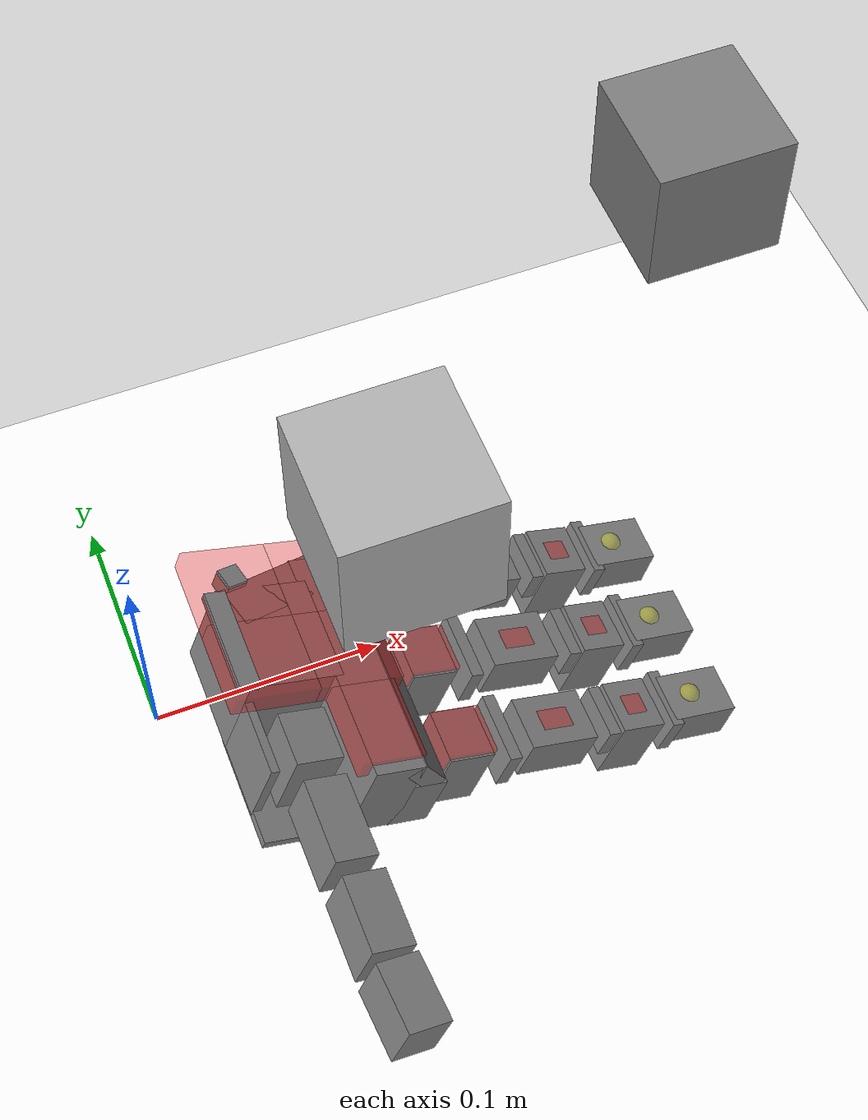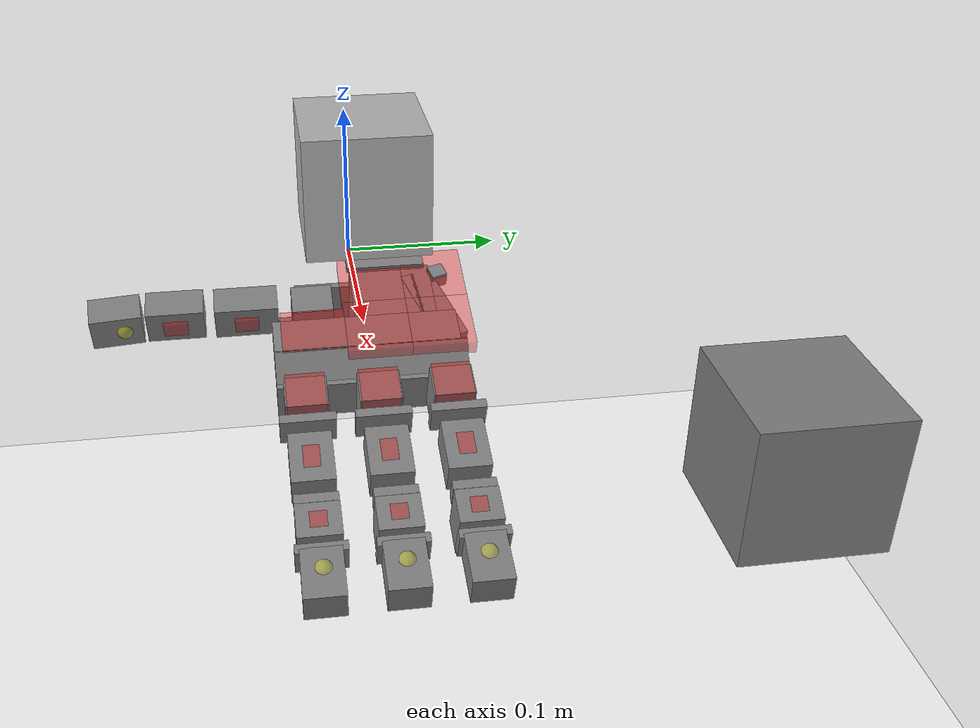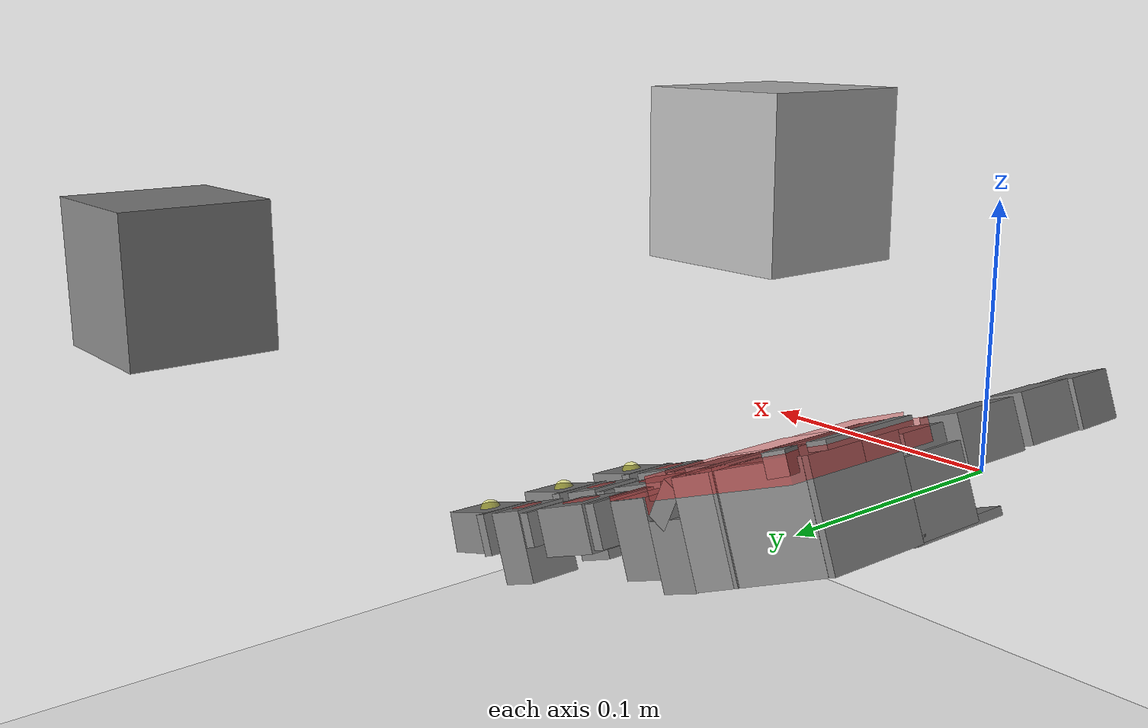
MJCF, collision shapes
<mujoco model="leap_scene">
  <include file="leap_rh_touch_mjx.xml"/>

  <default>
    <default class="cube">
      <geom friction=".3 0.05" conaffinity="2" condim="3"/>
    </default>
  </default>

  <statistic center="0.15 0 0" extent="0.4" meansize="0.01"/>

  <visual>
    <headlight diffuse=".8 .8 .8" ambient=".2 .2 .2" specular="1 1 1"/>
    <rgba force="1 0 0 1"/>
    <global azimuth="120" elevation="-20"/>
    <map force="0.01" stiffness="500"/>
    <scale forcewidth="0.1" contactwidth="0.5" contactheight="0.2"/>
    <quality shadowsize="8192"/>
  </visual>

  <asset>
    <texture type="skybox" builtin="gradient" rgb1="1 1 1" rgb2="1 1 1" width="800" height="800"/>
    <texture type="2d" name="groundplane" builtin="checker" mark="edge" rgb1="1 1 1" rgb2="1 1 1" markrgb="0 0 0"
      width="300" height="300"/>
    <material name="groundplane" texture="groundplane" texuniform="true" texrepeat="5 5" reflectance="0"/>

    <!-- Object materials -->
    <material name="cube_gray" rgba="0.7 0.7 0.7 1"/>
    <material name="pink" rgba="1.0 0.4 0.8 1.0"/>
    <material name="lightblue" rgba="0.6 0.8 1.0 1.0"/>
    <material name="lightgreen" rgba="0.6 1.0 0.6 1.0"/>
    <material name="lightyellow" rgba="1.0 1.0 0.6 1.0"/>
    <material name="lightpurple" rgba="0.8 0.6 1.0 1.0"/>
    <material name="salmon" rgba="1.0 0.6 0.5 1.0"/>
  </asset>

  <worldbody>
    <camera name="side" pos="-0.183 0.396 0.296" xyaxes="-0.783 -0.622 -0.000 0.332 -0.419 0.845"/>
    <geom name="floor" pos="0 0 -0.25" size="0 0 0.01" type="plane" material="groundplane" contype="2" conaffinity="2"/>

    <!-- Cube 0 - Original Cube -->
    <body name="cube0" pos="0.11 0.0 0.1" quat="1 0 0 0" childclass="cube">
      <freejoint name="cube0_freejoint"/>
      <geom name="cube0_geom" type="box" size=".035 .035 .035" mass=".036" material="cube_gray" contype="4" conaffinity="3" group="3"/>
      <site name="cube0_center" pos="0 0 0" group="4"/>
    </body>

    <!-- Cube 1 -->
    <body name="cube1" pos="0.11 0.0 0.1" quat="1 0 0 0" childclass="cube">
      <freejoint name="cube1_freejoint"/>
      <geom name="cube1_geom" type="box" size=".033333 .033333 .033333" mass=".031098" material="lightblue" contype="8" conaffinity="3" group="3"/>
      <site name="cube1_center" pos="0 0 0" group="4"/>
    </body>

    <!-- Cube 2 -->
    <body name="cube2" pos="0.11 0.0 0.1" quat="1 0 0 0" childclass="cube">
      <freejoint name="cube2_freejoint"/>
      <geom name="cube2_geom" type="box" size=".031667 .031667 .031667" mass=".026663" material="lightgreen" contype="16" conaffinity="3" group="3"/>
      <site name="cube2_center" pos="0 0 0" group="4"/>
    </body>

    <!-- Cube 3 -->
    <body name="cube3" pos="0.11 0.0 0.1" quat="1 0 0 0" childclass="cube">
      <freejoint name="cube3_freejoint"/>
      <geom name="cube3_geom" type="box" size=".03 .03 .03" mass=".022671" material="lightyellow" contype="32" conaffinity="3" group="3"/>
      <site name="cube3_center" pos="0 0 0" group="4"/>
    </body>

    <!-- Cube 4 -->
    <body name="cube4" pos="0.11 0.0 0.1" quat="1 0 0 0" childclass="cube">
      <freejoint name="cube4_freejoint"/>
      <geom name="cube4_geom" type="box" size=".028333 .028333 .028333" mass=".019098" material="lightpurple" contype="64" conaffinity="3" group="3"/>
      <site name="cube4_center" pos="0 0 0" group="4"/>
    </body>

    <!-- Cube 5 -->
    <body name="cube5" pos="0.11 0.0 0.1" quat="1 0 0 0" childclass="cube">
      <freejoint name="cube5_freejoint"/>
      <geom name="cube5_geom" type="box" size=".026667 .026667 .026667" mass=".015922" material="lightpurple" contype="128" conaffinity="3" group="3"/>
      <site name="cube5_center" pos="0 0 0" group="4"/>
    </body>

    <!-- Cube 6 -->
    <body name="cube6" pos="0.11 0.0 0.1" quat="1 0 0 0" childclass="cube">
      <freejoint name="cube6_freejoint"/>
      <geom name="cube6_geom" type="box" size=".025 .025 .025" mass=".01312" material="salmon" contype="256" conaffinity="3" group="3"/>
      <site name="cube6_center" pos="0 0 0" group="4"/>
    </body>

    <body name="goal" mocap="true" pos="0.325 0.17 0.0475">
      <geom type="box" size=".035 .035 .035" mass=".108" group="3"/>
    </body>
  </worldbody>

  <sensor>
    <!-- cube sensors for all objects -->
    <framepos name="cube0_position" objtype="body" objname="cube0"/>
    <framequat name="cube0_orientation" objtype="body" objname="cube0"/>
    <framelinvel name="cube0_linvel" objtype="body" objname="cube0"/>
    <frameangvel name="cube0_angvel" objtype="body" objname="cube0"/>
    <frameangacc name="cube0_angacc" objtype="body" objname="cube0"/>
    <framezaxis name="cube0_upvector" objtype="body" objname="cube0"/>

    <framepos name="cube1_position" objtype="body" objname="cube1"/>
    <framequat name="cube1_orientation" objtype="body" objname="cube1"/>
    <framelinvel name="cube1_linvel" objtype="body" objname="cube1"/>
    <frameangvel name="cube1_angvel" objtype="body" objname="cube1"/>
    <frameangacc name="cube1_angacc" objtype="body" objname="cube1"/>
    <framezaxis name="cube1_upvector" objtype="body" objname="cube1"/>

    <framepos name="cube2_position" objtype="body" objname="cube2"/>
    <framequat name="cube2_orientation" objtype="body" objname="cube2"/>
    <framelinvel name="cube2_linvel" objtype="body" objname="cube2"/>
    <frameangvel name="cube2_angvel" objtype="body" objname="cube2"/>
    <frameangacc name="cube2_angacc" objtype="body" objname="cube2"/>
    <framezaxis name="cube2_upvector" objtype="body" objname="cube2"/>

    <framepos name="cube3_position" objtype="body" objname="cube3"/>
    <framequat name="cube3_orientation" objtype="body" objname="cube3"/>
    <framelinvel name="cube3_linvel" objtype="body" objname="cube3"/>
    <frameangvel name="cube3_angvel" objtype="body" objname="cube3"/>
    <frameangacc name="cube3_angacc" objtype="body" objname="cube3"/>
    <framezaxis name="cube3_upvector" objtype="body" objname="cube3"/>

    <framepos name="cube4_position" objtype="body" objname="cube4"/>
    <framequat name="cube4_orientation" objtype="body" objname="cube4"/>
    <framelinvel name="cube4_linvel" objtype="body" objname="cube4"/>
    <frameangvel name="cube4_angvel" objtype="body" objname="cube4"/>
    <frameangacc name="cube4_angacc" objtype="body" objname="cube4"/>
    <framezaxis name="cube4_upvector" objtype="body" objname="cube4"/>

    <framepos name="cube5_position" objtype="body" objname="cube5"/>
    <framequat name="cube5_orientation" objtype="body" objname="cube5"/>
    <framelinvel name="cube5_linvel" objtype="body" objname="cube5"/>
    <frameangvel name="cube5_angvel" objtype="body" objname="cube5"/>
    <frameangacc name="cube5_angacc" objtype="body" objname="cube5"/>
    <framezaxis name="cube5_upvector" objtype="body" objname="cube5"/>

    <framepos name="cube6_position" objtype="body" objname="cube6"/>
    <framequat name="cube6_orientation" objtype="body" objname="cube6"/>
    <framelinvel name="cube6_linvel" objtype="body" objname="cube6"/>
    <frameangvel name="cube6_angvel" objtype="body" objname="cube6"/>
    <frameangacc name="cube6_angacc" objtype="body" objname="cube6"/>
    <framezaxis name="cube6_upvector" objtype="body" objname="cube6"/>

    <!-- hand. -->
    <framepos name="palm_position" objtype="site" objname="grasp_site"/>
    <framepos name="th_tip_position" objtype="site" objname="th_tip" reftype="site" refname="grasp_site"/>
    <framepos name="if_tip_position" objtype="site" objname="if_tip" reftype="site" refname="grasp_site"/>
    <framepos name="mf_tip_position" objtype="site" objname="mf_tip" reftype="site" refname="grasp_site"/>
    <framepos name="rf_tip_position" objtype="site" objname="rf_tip" reftype="site" refname="grasp_site"/>

    <!-- goal. -->
    <framequat name="cube_goal_orientation" objtype="body" objname="goal"/>
    <framezaxis name="cube_goal_upvector" objtype="body" objname="goal"/>
  </sensor>

  <keyframe>
    <key name="home"
      qpos="
      0.8 0 0.8 0.8
      0.8 0 0.8 0.8
      0.8 0 0.8 0.8
      0.8 0.8 0.8 0
      0.11 0.0 0.1 1 0 0 0
      0.11 0.0 0.1 1 0 0 0
      0.11 0.0 0.1 1 0 0 0
      0.11 0.0 0.1 1 0 0 0
      0.11 0.0 0.1 1 0 0 0
      0.11 0.0 0.1 1 0 0 0
      0.11 0.0 0.1 1 0 0 0"
      ctrl="
      0.8 0 0.8 0.8
      0.8 0 0.8 0.8
      0.8 0 0.8 0.8
      0.8 0.8 0.8 0" mpos="0.25 0.16 0"
      mquat="1 0 0 0"/>
  </keyframe>
</mujoco>

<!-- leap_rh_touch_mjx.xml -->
<mujoco model="leap_rh">
  <compiler angle="radian" autolimits="true"/>

  <option timestep="0.01" integrator="Euler" iterations="5" ls_iterations="8">
    <flag eulerdamp="disable"/>
  </option>

  <custom>
    <numeric data="30" name="max_contact_points"/>
    <numeric data="12" name="max_geom_pairs"/>
  </custom>

  <asset>
    <material name="black" rgba="0.2 0.2 0.2 1"/>
    <material name="gray" rgba="0.5 0.5 0.5 1"/>
    <mesh name="leap_mount" file="meshes/leap_mount.obj"/>
    <!-- Example path to palm right -->
    <!-- mujoco_playground/external_deps/mujoco_menagerie/leap_hand/assets/palm_right.obj -->
    <!-- original path, incorrect. -->
    <!-- correct path -->
    <!-- For Mujoco Viewer debugging, temporarily switch these mesh file paths to absolute paths. -->
    <mesh name="palm" file="../../../../external_deps/mujoco_menagerie/leap_hand/assets/palm_right.obj"/>
    <mesh name="base" file="../../../../external_deps/mujoco_menagerie/leap_hand/assets/base.obj"/>
    <mesh name="proximal" file="../../../../external_deps/mujoco_menagerie/leap_hand/assets/proximal.obj"/>
    <mesh name="medial" file="../../../../external_deps/mujoco_menagerie/leap_hand/assets/medial.obj"/>
    <mesh name="distal" file="../../../../external_deps/mujoco_menagerie/leap_hand/assets/distal.obj"/>
    <mesh name="tip" file="../../../../external_deps/mujoco_menagerie/leap_hand/assets/tip.obj"/>
    <mesh name="thumb_base" file="../../../../external_deps/mujoco_menagerie/leap_hand/assets/thumb_base.obj"/>
    <mesh name="thumb_proximal" file="../../../../external_deps/mujoco_menagerie/leap_hand/assets/thumb_proximal.obj"/>
    <mesh name="thumb_distal" file="../../../../external_deps/mujoco_menagerie/leap_hand/assets/thumb_distal.obj"/>
    <mesh name="thumb_tip" file="../../../../external_deps/mujoco_menagerie/leap_hand/assets/thumb_tip.obj"/>
  </asset>

  <default>
    <default class="leap_touch">
      <site type="box" size="0.005 0.005 0.005" rgba="0.8 0.8 0.8 0.15" group="4"/>
    </default>
    <default class="leap_rh">
      <geom group="3" friction="1.1 0.2 0.0002" solref="0.02 1.5" solimp="0.9 0.99 0.001"/>
      <default class="visual">
        <geom group="2" type="mesh" contype="0" conaffinity="0" density="0" material="black"/>
      </default>
      <default class="tip">
        <geom size="0.01 0.012 0.016" pos="-0.0012969 -0.0335524 0.0145207" quat="0.703552 0.709596 -0.0292107 -0.0252203" type="box" friction="0.7 0.05 0.0002" rgba=".5 .5 .5 .3"/>
      </default>
      <default class="thumb_tip">
        <geom size="0.01 0.012 0.016" pos="-0.00127744 -0.0455619 -0.0144774" quat="0.708101 0.705072 -0.0294902 -0.024426" type="box" friction="0.7 0.05 0.0002" rgba=".5 .5 .5 .3"/>
      </default>

      <position kp="3.0" inheritrange="1"/>
      <!-- armature = rotor inertia * gear ratio^2 = 1.7 * 1e-8 * 288*288 = 0.00149376 -->
      <!-- max torque = 0.2196 = 600/1000*0.366 -->
      <!-- frictionloss = rough guess, small ish value -->
      <joint axis="0 0 -1" damping="0.2" armature="0.00149376" actuatorfrcrange="-0.2196 0.2196" frictionloss="0.02"/>

      <default class="mcp">
        <joint range="-0.314 2.23"/>
      </default>
      <default class="rot">
        <joint range="-1.047 1.047"/>
      </default>
      <default class="pip">
        <joint range="-0.506 1.885"/>
      </default>
      <default class="dip">
        <joint range="-0.366 2.042"/>
      </default>
      <default class="thumb_cmc">
        <joint range="-0.349 2.094"/>
      </default>
      <default class="thumb_axl">
        <joint range="-0.349 2.094"/>
      </default>
      <default class="thumb_mcp">
        <joint range="-0.47 2.443"/>
      </default>
      <default class="thumb_ipl">
        <joint range="-1.34 1.88"/>
      </default>

    </default>
  </default>

  <contact>
    <!-- filter the palm from all other finger bodies except the tips -->
    <exclude body1="palm" body2="if_bs"/>
    <exclude body1="palm" body2="mf_bs"/>
    <exclude body1="palm" body2="rf_bs"/>
    <exclude body1="palm" body2="th_mp"/>

    <exclude body1="palm" body2="if_px"/>
    <exclude body1="palm" body2="mf_px"/>
    <exclude body1="palm" body2="rf_px"/>
    <exclude body1="palm" body2="th_bs"/>

    <exclude body1="palm" body2="if_md"/>
    <exclude body1="palm" body2="mf_md"/>
    <exclude body1="palm" body2="rf_md"/>
    <exclude body1="palm" body2="th_px"/>

    <!-- filter the mount from all finger bodies except the tips -->
    <exclude body1="leap_mount" body2="if_bs"/>
    <exclude body1="leap_mount" body2="mf_bs"/>
    <exclude body1="leap_mount" body2="rf_bs"/>
    <exclude body1="leap_mount" body2="th_mp"/>

    <exclude body1="leap_mount" body2="if_px"/>
    <exclude body1="leap_mount" body2="mf_px"/>
    <exclude body1="leap_mount" body2="rf_px"/>
    <exclude body1="leap_mount" body2="th_bs"/>

    <exclude body1="leap_mount" body2="if_md"/>
    <exclude body1="leap_mount" body2="mf_md"/>
    <exclude body1="leap_mount" body2="rf_md"/>
    <exclude body1="leap_mount" body2="th_px"/>

    <!-- none of the base fingertip geoms can touch each other -->
    <exclude body1="if_bs" body2="mf_bs"/>
    <exclude body1="if_bs" body2="rf_bs"/>
    <exclude body1="mf_bs" body2="rf_bs"/>

    <exclude body1="th_mp" body2="if_bs"/>
    <exclude body1="th_mp" body2="mf_bs"/>
    <exclude body1="th_mp" body2="rf_bs"/>
  </contact>

  <worldbody>
    <light name="spotlight" mode="targetbodycom" target="palm" pos="3 0 4"/>
    <body name="leap_mount" pos="0 0 0" quat="1 0 0 0" childclass="leap_rh">
      <geom name="leap_mount_visual" pos="0 0 0" quat="1 0 0 0" class="visual" mesh="leap_mount"/>
      <geom name="leap_mount_collision_0" size="0.002 0.025 0.005" pos="0.0405 0.02 0.009"
        quat="0.57346234 0 0.81923192 0" type="box"/>
      <geom name="leap_mount_collision_1" size="0.005 0.005 0.005" pos="0.05 0.053 0.002"
        quat="0.4987168 0.64994038 -0.34910175 0.45495826" type="box"/>
      <site name="grasp_site" pos="0.11 0.0 0.03" group="4"/>
      <body name="palm" pos="0.124 -0.0305 -0.06045" quat="0 1 0 -0.175">
        <inertial pos="-0.049542 -0.042914 -0.010227" quat="0.565586 0.427629 -0.574956 0.408254" mass="0.237"
          diaginertia="0.000407345 0.000304759 0.000180736"/>
        <site name="palm_touch_center" type="box" pos="-0.05 -0.04 -0.032" size="0.02 0.02 0.005" rgba="1 0 0 0.33"/>
        <site name="palm_touch_right" type="box" pos="-0.05 0 -0.032" size="0.015 0.02 0.005" rgba="1 0 0 0.33"/>
        <site name="palm_touch_left" type="box" pos="-0.05 -0.08 -0.032" size="0.02 0.02 0.005" rgba="1 0 0 0.33"/>
        <site name="palm_touch_back" type="box" pos="-0.09 -0.04 -0.032" size="0.02 0.02 0.005" rgba="1 0 0 0.33"/>
        <site name="palm_touch_back_left" type="box" pos="-0.09 -0.08 -0.032" size="0.02 0.02 0.005" rgba="1 0 0 0.33"/>
        <geom name="palm_visual" pos="-0.02 0.02575 -0.0347" quat="1 0 0 0" class="visual" mesh="palm"/>
        <site name="palm_touch_if" type="box" size="0.012 0.012 0.005" pos="-0.009 0.008 -0.025" rgba="1 0 0 0.33"/>
        <geom name="palm_collision_1" size="0.011 0.013 0.017" pos="-0.009 0.008 -0.011" type="box"/>

        <site name="palm_touch_mf" type="box" size="0.012 0.012 0.005" pos="-0.009 -0.037 -0.025" rgba="1 0 0 0.33"/>
        <geom name="palm_collision_2" size="0.011 0.013 0.017" pos="-0.009 -0.037 -0.011" type="box"/>

        <site name="palm_touch_rf" type="box" size="0.012 0.012 0.005" pos="-0.009 -0.082 -0.025" rgba="1 0 0 0.33"/>
        <geom name="palm_collision_3" size="0.011 0.013 0.017" pos="-0.009 -0.082 -0.011" type="box"/>
        <geom name="palm_collision_4" size="0.029 0.01 0.023" pos="-0.066 -0.078 -0.0115" quat="0.989016 0 0 -0.147806" type="box"/>
        <geom name="palm_collision_5" size="0.01 0.06 0.015" pos="-0.03 -0.035 -0.003" type="box"/>
        <geom name="palm_collision_6" size="0.005 0.06 0.01" pos="-0.032 -0.035 -0.024" quat="0.923956 0 0.382499 0" type="box"/>
        <geom name="palm_collision_7" size="0.012 0.058 0.023" pos="-0.048 -0.033 -0.0115" type="box"/>
        <geom name="palm_collision_8" size="0.022 0.026 0.023" pos="-0.078 -0.053 -0.0115" type="box"/>
        <geom name="palm_collision_9" size="0.002 0.018 0.017" pos="-0.098 -0.009 -0.006" type="box"/>
        <geom name="palm_collision_10" size="0.022 0.028 0.002" pos="-0.078 -0.003 0.01" type="box"/>
        <body name="if_bs" pos="-0.007 0.023 -0.0187" quat="0.5 0.5 0.5 -0.5">
          <inertial pos="-0.022516 0.033882 0.016359" quat="0.388092 0.677951 -0.247713 0.573067" mass="0.044"
            diaginertia="1.74972e-05 1.61504e-05 7.21342e-06"/>
          <joint name="if_mcp" class="mcp"/>
          <geom name="if_bs_visual" pos="0.0084 0.0077 0.01465" quat="1 0 0 0" class="visual" mesh="base"/>
          <geom name="if_bs_collision_1" size="0.01 0.003 0.017" pos="0 0.018 0.0147" type="box"/>
          <body name="if_px" pos="-0.0122 0.0381 0.0145" quat="0.500003 -0.5 -0.499997 0.5">
            <inertial pos="0.0075 -0.0002 -0.011" quat="0 0.707107 0 0.707107" mass="0.032"
              diaginertia="4.8853e-06 4.3733e-06 3.0933e-06"/>
            <joint name="if_rot" class="rot"/>
            <geom name="if_px_visual" pos="0.0096 0.0002 0.0007" quat="0.500003 -0.5 -0.5 -0.499997" class="visual"
              mesh="proximal"/>
            <geom name="if_px_collision" size="0.017 0.013 0.011" pos="0.0075 -0.0002 -0.011" type="box"/>
            <site name="if_px_touch" type="box" size="0.0075 0.005 0.0025" pos="0.0075 -0.0002 -0.02" rgba="1 0 0 0.33"/>

            <body name="if_md" pos="0.015 0.0143 -0.013" quat="0.500003 0.5 -0.5 0.499997">
              <inertial pos="0.0054215 -0.029148 0.015" quat="0.687228 0.687228 0.166487 0.166487" mass="0.037"
                diaginertia="8.28004e-06 8.1598e-06 5.39516e-06"/>
              <joint name="if_pip" class="pip"/>
              <geom name="if_md_visual" pos="0.0211 -0.0084 0.0097" quat="2.67949e-08 -1 0 0" class="visual"
                mesh="medial"/>
              <geom name="if_md_collision_1" size="0.008 0.003 0.013" pos="0 -0.02 0.015" type="box"/>
              <geom name="if_md_collision_5" size="0.017 0.011 0.013" pos="0.0075 -0.035 0.015" type="box"/>
              <site name="if_md_touch" type="box" pos="-0.0075 -0.035 0.015" size="0.0025 0.005 0.005" rgba="1 0 0 0.33"/>
              <body name="if_ds" pos="0 -0.0361 0.0002">
                <inertial pos="-0.0008794 -0.027019 0.014594" quat="0.702905 0.710643 -0.0212937 -0.0214203"
                  mass="0.016" diaginertia="3.71863e-06 3.02396e-06 1.6518e-06"/>
                <joint name="if_dip" class="dip"/>
                <geom name="if_ds_visual" pos="0.0132 -0.0061 0.0144" quat="2.67949e-08 1 0 0" class="visual"
                  mesh="distal"/>
                <geom name="if_ds_collision_1" size="0.01 0.003 0.015" pos="0 -0.017 0.015" type="box"/>
                <geom name="if_tip" class="tip"/>
                <geom type="mesh" mesh="tip" class="visual" material="gray"/>
                <site name="if_tip" pos="0 -0.05 0.015" group="4" />
                <site name="if_tip_touch" type="sphere" pos="-0.01 -0.03 0.015" size="0.005" rgba="1 1 0 0.33"/>
              </body>
            </body>
          </body>
        </body>
        <body name="mf_bs" pos="-0.0071 -0.0224 -0.0187" quat="0.500003 0.5 0.5 -0.499997">
          <inertial pos="-0.022516 0.033882 0.016359" quat="0.388092 0.677951 -0.247713 0.573067" mass="0.044"
            diaginertia="1.74972e-05 1.61504e-05 7.21342e-06"/>
          <joint name="mf_mcp" class="mcp"/>
          <geom name="mf_bs_visual" pos="0.0084 0.0077 0.01465" quat="1 0 0 0" class="visual" mesh="base"/>
          <geom name="mf_bs_collision_1" size="0.01 0.003 0.017" pos="0 0.018 0.0147" type="box"/>
          <body name="mf_px" pos="-0.0122 0.0381 0.0145" quat="0.500003 -0.5 -0.499997 0.5">
            <inertial pos="0.0075 -0.0002 -0.011" quat="0 0.707107 0 0.707107" mass="0.032"
              diaginertia="4.8853e-06 4.3733e-06 3.0933e-06"/>
            <joint name="mf_rot" class="rot"/>
            <geom name="mf_px_visual" pos="0.0096 0.0003 0.0007" quat="0.500003 -0.5 -0.5 -0.499997" class="visual"
              mesh="proximal"/>
            <geom name="mf_px_collision" size="0.017 0.013 0.011" pos="0.0075 -0.0002 -0.011" type="box"/>
            <site name="mf_px_touch" type="box" size="0.0075 0.005 0.0025" pos="0.0075 -0.0002 -0.02" rgba="1 0 0 0.33"/>
            <body name="mf_md" pos="0.015 0.0143 -0.013" quat="0.500003 0.5 -0.5 0.499997">
              <inertial pos="0.0054215 -0.029148 0.015" quat="0.687228 0.687228 0.166487 0.166487" mass="0.037"
                diaginertia="8.28004e-06 8.1598e-06 5.39516e-06"/>
              <joint name="mf_pip" class="pip"/>
              <geom name="mf_md_visual" pos="0.0211 -0.0084 0.0097" quat="1.32679e-06 -1 0 0" class="visual"
                mesh="medial"/>
              <geom name="mf_md_collision_1" size="0.008 0.003 0.013" pos="0 -0.02 0.015" type="box"/>
              <geom name="mf_md_collision_5" size="0.017 0.011 0.013" pos="0.0075 -0.035 0.015" type="box"/>
              <site name="mf_md_touch" type="box" pos="-0.0075 -0.035 0.015" size="0.0025 0.005 0.005" rgba="1 0 0 0.33"/>
              <body name="mf_ds" pos="0 -0.0361 0.0002">
                <inertial pos="-0.0008794 -0.027019 0.014594" quat="0.702905 0.710643 -0.0212937 -0.0214203"
                  mass="0.016" diaginertia="3.71863e-06 3.02396e-06 1.6518e-06"/>
                <joint name="mf_dip" class="dip"/>
                <geom name="mf_ds_visual" pos="0.0132 -0.0061 0.0145" quat="1.32679e-06 1 0 0" class="visual"
                  mesh="distal"/>
                <geom name="mf_ds_collision_1" size="0.01 0.003 0.015" pos="0 -0.017 0.015" type="box"/>
                <geom name="mf_tip" class="tip"/>
                <geom type="mesh" mesh="tip" class="visual" material="gray"/>
                <site name="mf_tip" pos="0 -0.05 0.015" group="4"/>
                <site name="mf_tip_touch" type="sphere" pos="-0.01 -0.03 0.015" size="0.005" rgba="1 1 0 0.33"/>
              </body>
            </body>
          </body>
        </body>
        <body name="rf_bs" pos="-0.00709 -0.0678 -0.0187" quat="0.500003 0.5 0.5 -0.499997">
          <inertial pos="-0.022516 0.033882 0.016359" quat="0.388092 0.677951 -0.247713 0.573067" mass="0.044"
            diaginertia="1.74972e-05 1.61504e-05 7.21342e-06"/>
          <joint name="rf_mcp" class="mcp"/>
          <geom name="rf_bs_visual" pos="0.0084 0.0077 0.01465" quat="1 0 0 0" class="visual" mesh="base"/>
          <geom name="rf_bs_collision_1" size="0.01 0.003 0.017" pos="0 0.018 0.0147" type="box"/>
          <body name="rf_px" pos="-0.0122 0.0381 0.0145" quat="0.500003 -0.5 -0.499997 0.5">
            <inertial pos="0.0075 -0.0002 -0.011" quat="0 0.707107 0 0.707107" mass="0.032"
              diaginertia="4.8853e-06 4.3733e-06 3.0933e-06"/>
            <joint name="rf_rot" class="rot"/>
            <geom name="rf_px_visual" pos="0.0096 0.0003 0.0007" quat="0.500003 -0.5 -0.5 -0.499997" class="visual"
              mesh="proximal"/>
            <geom name="rf_px_collision" size="0.017 0.013 0.011" pos="0.0075 -0.0002 -0.011" type="box"/>
            <site name="rf_px_touch" type="box" size="0.0075 0.005 0.0025" pos="0.0075 -0.0002 -0.02" rgba="1 0 0 0.33"/>
            <body name="rf_md" pos="0.015 0.0143 -0.013" quat="0.500003 0.5 -0.5 0.499997">
              <inertial pos="0.0054215 -0.029148 0.015" quat="0.687228 0.687228 0.166487 0.166487" mass="0.037"
                diaginertia="8.28004e-06 8.1598e-06 5.39516e-06"/>
              <joint name="rf_pip" class="pip"/>
              <geom name="rf_md_visual" pos="0.0211 -0.0084 0.0097" quat="0 -1 0 0" class="visual" mesh="medial"/>
              <geom name="rf_md_collision_1" size="0.008 0.003 0.013" pos="0 -0.02 0.015" type="box"/>
              <geom name="rf_md_collision_5" size="0.017 0.011 0.013" pos="0.0075 -0.035 0.015" type="box"/>
              <site name="rf_md_touch" type="box" pos="-0.0075 -0.035 0.015" size="0.0025 0.005 0.005" rgba="1 0 0 0.33"/>
              <body name="rf_ds" pos="0 -0.03609 0.0002">
                <inertial pos="-0.0008794 -0.027019 0.014594" quat="0.702905 0.710643 -0.0212937 -0.0214203"
                  mass="0.016" diaginertia="3.71863e-06 3.02396e-06 1.6518e-06"/>
                <joint name="rf_dip" class="dip"/>
                <geom name="rf_ds_visual" pos="0.0132 -0.0061 0.0145" quat="0 1 0 0" class="visual" mesh="distal"/>
                <geom name="rf_ds_collision_1" size="0.01 0.003 0.015" pos="0 -0.017 0.015" type="box"/>
                <geom name="rf_tip" class="tip"/>
                <geom type="mesh" mesh="tip" class="visual" material="gray"/>
                <site name="rf_tip" pos="0 -0.05 0.015" group="4"/>
                <site name="rf_tip_touch" type="sphere" pos="-0.01 -0.03 0.015" size="0.005" rgba="1 1 0 0.33"/>
              </body>
            </body>
          </body>
        </body>
        <body name="th_mp" pos="-0.0693 -0.0012 -0.0216" quat="0.707109 0 0.707105 0">
          <inertial pos="0.0075 -0.0002 -0.011" quat="0 0.707107 0 0.707107" mass="0.032"
            diaginertia="4.8853e-06 4.3733e-06 3.0933e-06"/>
          <joint name="th_cmc" class="thumb_cmc"/>
          <geom name="th_mp_visual" pos="-0.0053 0.0003 0.00078" quat="0.500003 -0.5 -0.5 -0.499997" class="visual"
            mesh="proximal"/>
          <geom name="th_mp_collision" size="0.017 0.013 0.011" pos="-0.0075 -0.0002 -0.011" type="box"/>
          <body name="th_bs" pos="0 0.0143 -0.013" quat="0.500003 0.5 -0.5 0.499997">
            <inertial pos="0 0 -0.0070806" quat="0.707107 0.707107 0 0" mass="0.003"
              diaginertia="6.1932e-07 5.351e-07 2.1516e-07"/>
            <joint name="th_axl" class="thumb_axl"/>
            <geom name="th_bs_collision_1" pos="0.01196 0 -0.0158" quat="0.707109 0.707105 0 0" class="visual" mesh="thumb_base"/>
            <body name="th_px" pos="0 0.0145 -0.017" quat="0.707109 -0.707105 0 0">
              <inertial pos="-0.0020593 0.015912 -0.013733" quat="0.698518 0.697382 -0.104933 0.121324" mass="0.038"
                diaginertia="9.87104e-06 9.32653e-06 4.36203e-06"/>
              <joint name="th_mcp" class="thumb_mcp"/>
              <geom name="th_px_visual" pos="0.0439 0.0579 -0.0086" quat="1 0 0 0" class="visual" mesh="thumb_proximal"/>
              <geom name="th_px_collision_1" size="0.01 0.02 0.012" pos="0 0.0105 -0.014" type="box"/>
              <site name="th_px_touch" type="box" size="0.0025 0.0075 0.005" pos="0.01 0.0105 -0.014" rgba="1 0 0 0.33"/>
              <body name="th_ds" pos="0 0.0466 0.0002" quat="1.32679e-06 0 0 1">
                <inertial pos="0.00096191 -0.024203 -0.014419" quat="0.35287 0.311272 -0.632839 0.614904" mass="0.049"
                  diaginertia="2.08591e-05 2.0402e-05 4.71335e-06"/>
                <joint name="th_ipl" class="thumb_ipl"/>
                <geom name="th_ds_visual" pos="0.0625 0.0784 0.0489" quat="1 0 0 0" class="visual" mesh="thumb_distal"/>
                <geom name="th_ds_collision_1" size="0.01 0.018 0.012" pos="0 -0.0085 -0.015" type="box"/>
                <site name="th_ds_touch" type="box" size="0.0025 0.0075 0.005" pos="-0.01 -0.0085 -0.015" rgba="1 0 0 0.33"/>
                <geom name="th_tip" class="thumb_tip"/>
                <site name="th_tip" pos="0 -0.06 -0.015" group="4"/>
                <site name="th_tip_touch" type="sphere" pos="-0.01 -0.04 -0.015" size="0.005" rgba="1 1 0 0.33"/>
                <geom type="mesh" mesh="thumb_tip" class="visual" material="gray"/>
              </body>
            </body>
          </body>
        </body>
      </body>
    </body>
  </worldbody>

  <actuator>
    <position name="if_mcp_act" joint="if_mcp" class="mcp"/>
    <position name="if_rot_act" joint="if_rot" class="rot"/>
    <position name="if_pip_act" joint="if_pip" class="pip"/>
    <position name="if_dip_act" joint="if_dip" class="dip"/>
    <position name="mf_mcp_act" joint="mf_mcp" class="mcp"/>
    <position name="mf_rot_act" joint="mf_rot" class="rot"/>
    <position name="mf_pip_act" joint="mf_pip" class="pip"/>
    <position name="mf_dip_act" joint="mf_dip" class="dip"/>
    <position name="rf_mcp_act" joint="rf_mcp" class="mcp"/>
    <position name="rf_rot_act" joint="rf_rot" class="rot"/>
    <position name="rf_pip_act" joint="rf_pip" class="pip"/>
    <position name="rf_dip_act" joint="rf_dip" class="dip"/>
    <position name="th_cmc_act" joint="th_cmc" class="thumb_cmc"/>
    <position name="th_axl_act" joint="th_axl" class="thumb_axl"/>
    <position name="th_mcp_act" joint="th_mcp" class="thumb_mcp"/>
    <position name="th_ipl_act" joint="th_ipl" class="thumb_ipl"/>
  </actuator>
  <sensor>
    <touch name="palm_touch_center" site="palm_touch_center"/>
    <touch name="palm_touch_right" site="palm_touch_right"/>
    <touch name="palm_touch_left" site="palm_touch_left"/>
    <touch name="palm_touch_back" site="palm_touch_back"/>
    <touch name="palm_touch_back_left" site="palm_touch_back_left"/>

    <touch name="palm_touch_if" site="palm_touch_if"/>
    <touch name="palm_touch_mf" site="palm_touch_mf"/>
    <touch name="palm_touch_rf" site="palm_touch_rf"/>

    <touch name="if_px_touch" site="if_px_touch"/>
    <touch name="if_md_touch" site="if_md_touch"/>
    <touch name="if_tip_touch" site="if_tip_touch"/>
    <touch name="mf_px_touch" site="mf_px_touch"/>
    <touch name="mf_md_touch" site="mf_md_touch"/>
    <touch name="mf_tip_touch" site="mf_tip_touch"/>
    <touch name="rf_px_touch" site="rf_px_touch"/>
    <touch name="rf_md_touch" site="rf_md_touch"/>
    <touch name="rf_tip_touch" site="rf_tip_touch"/>
    <touch name="th_px_touch" site="th_px_touch"/>
    <touch name="th_ds_touch" site="th_ds_touch"/>
    <touch name="th_tip_touch" site="th_tip_touch"/>
  </sensor>
</mujoco>
